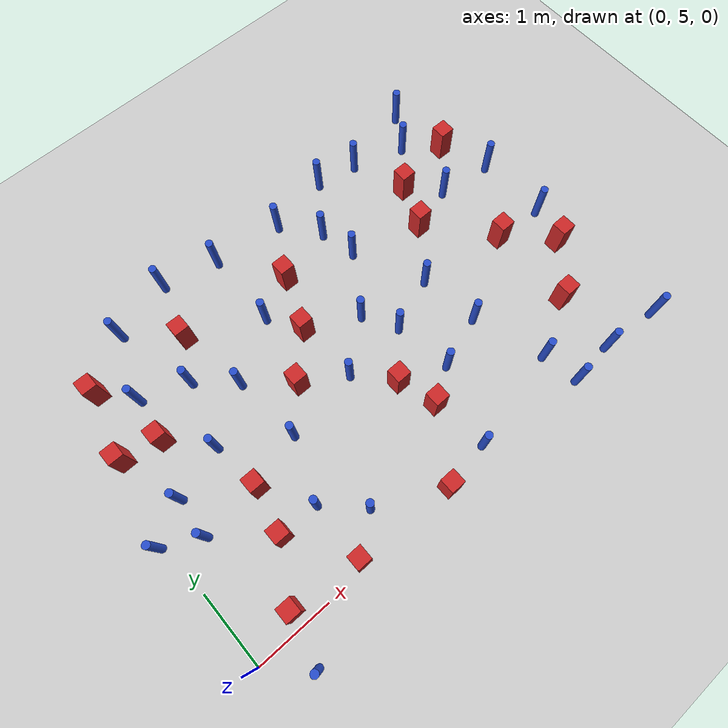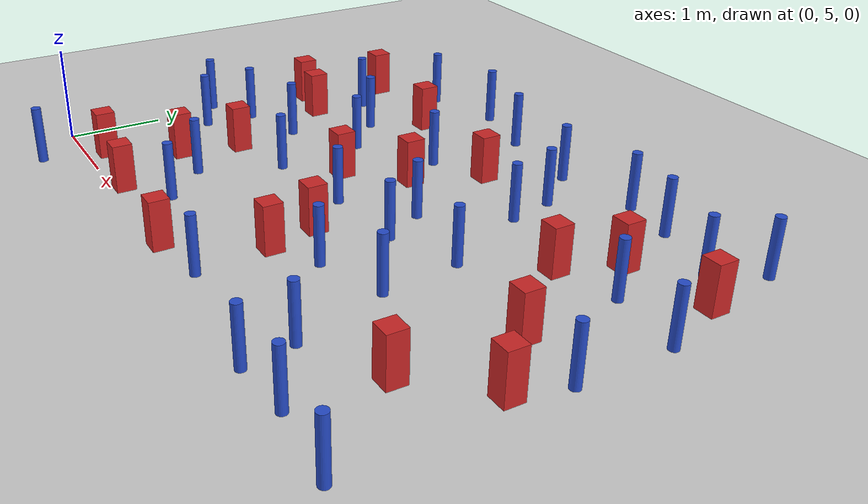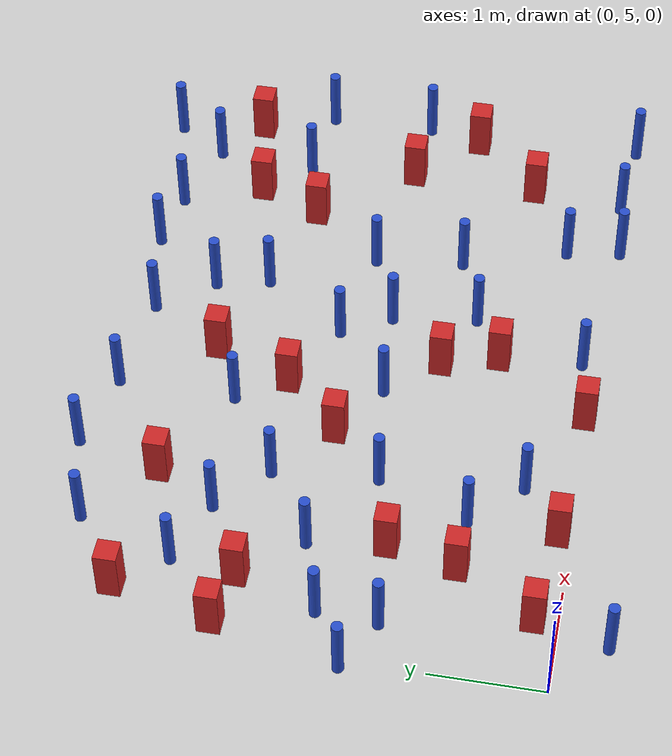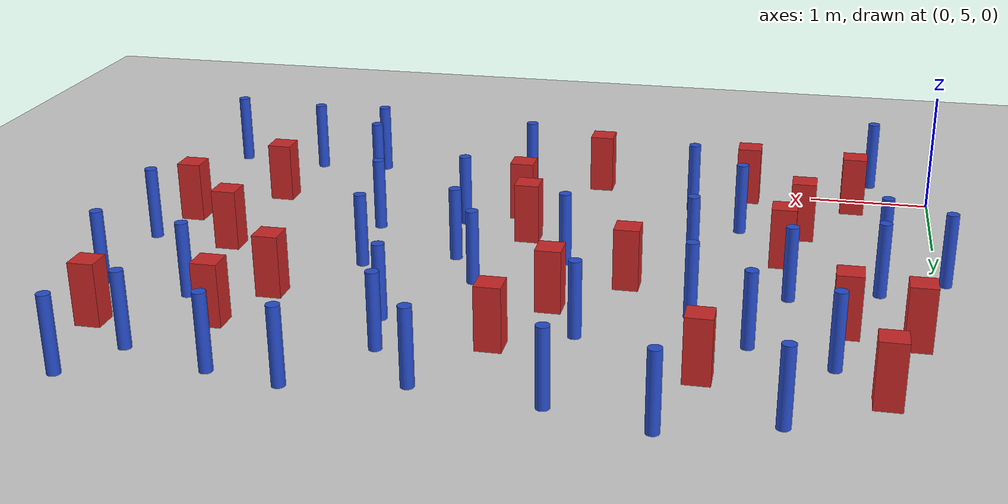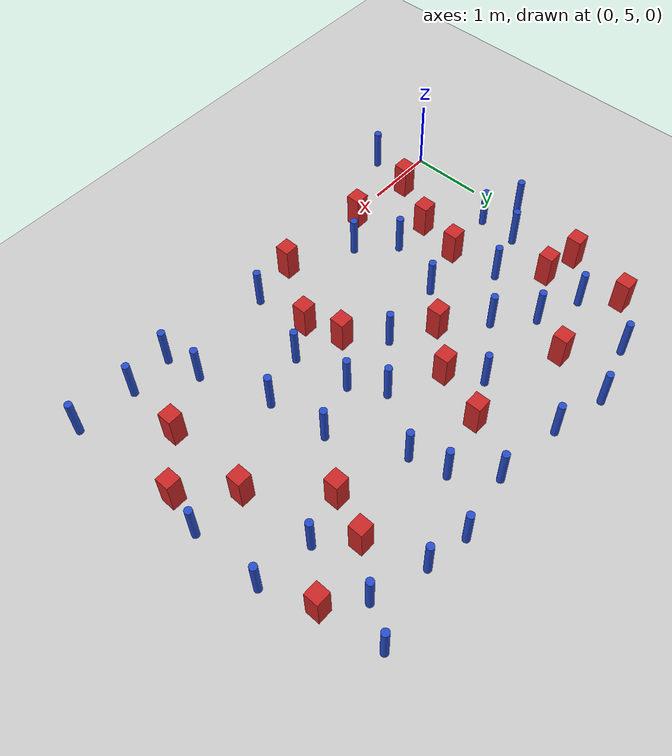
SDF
<sdf version="1.6">
 <world name="default">
  <model name="ground_plane">
   <static>1</static>
   <link name="link">
    <collision name="collision">
     <geometry><plane><normal>0 0 1</normal><size>100 100</size></plane></geometry>
     <surface><friction><ode><mu>100</mu><mu2>50</mu2></ode></friction></surface>
    </collision>
    <visual name="visual">
     <cast_shadows>0</cast_shadows>
     <geometry><plane><normal>0 0 1</normal><size>100 100</size></plane></geometry>
     <material>
      <ambient>1.0 1.0 1.0 1.0</ambient>
      <diffuse>0.8 0.8 0.8 1.0</diffuse>
      <specular>0.01 0.01 0.01 1.000000</specular>
     </material>
    </visual>
   </link>
  </model>
  <model name="square_post_obstacle6">
   <static>true</static>
   <pose>1.56429771834 5.11346397631 8.22691968438e-08 7.2212513382e-06 -7.54495500217e-07 2.29674213826e-05</pose>
   <link name="link">
    <pose>0 0 0.25 0 -0 0</pose>
    <inertial>
     <mass>100</mass>
     <inertia>
      <ixx>0.166667</ixx>
      <ixy>0</ixy>
      <ixz>0</ixz>
      <iyy>0.166667</iyy>
      <iyz>0</iyz>
      <izz>0.166667</izz>
     </inertia>
    </inertial>
    <collision name="collision"><geometry><box><size>.2 .2 .5</size></box></geometry></collision>
    <visual name="visual">
     <geometry><box><size>.2 .2 .5</size></box></geometry>
     <material>
      <script><name>Gazebo/Red</name><uri>file://media/materials/scripts/gazebo.material</uri></script>
     </material>
    </visual>
   </link>
  </model>
  <model name="square_post_obstacle11">
   <static>true</static>
   <pose>2.86878469184 7.71550263755 8.22691968438e-08 7.2212513382e-06 -7.54495500217e-07 2.29674213826e-05</pose>
   <link name="link">
    <pose>0 0 0.25 0 -0 0</pose>
    <inertial>
     <mass>100</mass>
     <inertia>
      <ixx>0.166667</ixx>
      <ixy>0</ixy>
      <ixz>0</ixz>
      <iyy>0.166667</iyy>
      <iyz>0</iyz>
      <izz>0.166667</izz>
     </inertia>
    </inertial>
    <collision name="collision"><geometry><box><size>.2 .2 .5</size></box></geometry></collision>
    <visual name="visual">
     <geometry><box><size>.2 .2 .5</size></box></geometry>
     <material>
      <script><name>Gazebo/Red</name><uri>file://media/materials/scripts/gazebo.material</uri></script>
     </material>
    </visual>
   </link>
  </model>
  <model name="pole_obstacle14">
   <static>true</static>
   <pose>1.8775066064 9.40847270662 2.88873142074e-08 -9.90536690474e-09 4.60219948974e-07 -1.2096599497e-07</pose>
   <link name="link">
    <pose>0 0 0.3 0 -0 0</pose>
    <inertial>
     <mass>1</mass>
     <inertia><ixx>0.145833</ixx><ixy>0</ixy><ixz>0</ixz><iyy>0.145833</iyy><iyz>0</iyz><izz>0.125</izz></inertia>
    </inertial>
    <collision name="collision">
     <geometry><cylinder><radius>0.05</radius><length>.6</length></cylinder></geometry>
    </collision>
    <visual name="visual">
     <geometry><cylinder><radius>0.05</radius><length>.6</length></cylinder></geometry>
     <material>
      <script><name>Gazebo/Blue</name><uri>file://media/materials/scripts/gazebo.material</uri></script>
     </material>
    </visual>
   </link>
  </model>
  <model name="pole_obstacle17">
   <static>true</static>
   <pose>-0.0674727620844 6.71778246287 2.88873142074e-08 -9.90536689653e-09 4.60219948994e-07 -1.20965994959e-07</pose>
   <link name="link">
    <pose>0 0 0.3 0 -0 0</pose>
    <inertial>
     <mass>1</mass>
     <inertia><ixx>0.145833</ixx><ixy>0</ixy><ixz>0</ixz><iyy>0.145833</iyy><iyz>0</iyz><izz>0.125</izz></inertia>
    </inertial>
    <collision name="collision">
     <geometry><cylinder><radius>0.05</radius><length>.6</length></cylinder></geometry>
    </collision>
    <visual name="visual">
     <geometry><cylinder><radius>0.05</radius><length>.6</length></cylinder></geometry>
     <material>
      <script><name>Gazebo/Blue</name><uri>file://media/materials/scripts/gazebo.material</uri></script>
     </material>
    </visual>
   </link>
  </model>
  <model name="square_post_obstacle14">
   <static>true</static>
   <pose>5.69747027684 7.0240183476 8.22691968438e-08 7.2212513382e-06 -7.54495500217e-07 2.29674213826e-05</pose>
   <link name="link">
    <pose>0 0 0.25 0 -0 0</pose>
    <inertial>
     <mass>100</mass>
     <inertia>
      <ixx>0.166667</ixx>
      <ixy>0</ixy>
      <ixz>0</ixz>
      <iyy>0.166667</iyy>
      <iyz>0</iyz>
      <izz>0.166667</izz>
     </inertia>
    </inertial>
    <collision name="collision"><geometry><box><size>.2 .2 .5</size></box></geometry></collision>
    <visual name="visual">
     <geometry><box><size>.2 .2 .5</size></box></geometry>
     <material>
      <script><name>Gazebo/Red</name><uri>file://media/materials/scripts/gazebo.material</uri></script>
     </material>
    </visual>
   </link>
  </model>
  <model name="pole_obstacle26">
   <static>true</static>
   <pose>3.94719929872 8.63067719352 2.88873142074e-08 -9.90536692318e-09 4.6021994893e-07 -1.20965994988e-07</pose>
   <link name="link">
    <pose>0 0 0.3 0 -0 0</pose>
    <inertial>
     <mass>1</mass>
     <inertia><ixx>0.145833</ixx><ixy>0</ixy><ixz>0</ixz><iyy>0.145833</iyy><iyz>0</iyz><izz>0.125</izz></inertia>
    </inertial>
    <collision name="collision">
     <geometry><cylinder><radius>0.05</radius><length>.6</length></cylinder></geometry>
    </collision>
    <visual name="visual">
     <geometry><cylinder><radius>0.05</radius><length>.6</length></cylinder></geometry>
     <material>
      <script><name>Gazebo/Blue</name><uri>file://media/materials/scripts/gazebo.material</uri></script>
     </material>
    </visual>
   </link>
  </model>
  <model name="pole_obstacle29">
   <static>true</static>
   <pose>2.91075863296 6.85931460848 2.88873142074e-08 -9.90536689859e-09 4.60219948989e-07 -1.20965994961e-07</pose>
   <link name="link">
    <pose>0 0 0.3 0 -0 0</pose>
    <inertial>
     <mass>1</mass>
     <inertia><ixx>0.145833</ixx><ixy>0</ixy><ixz>0</ixz><iyy>0.145833</iyy><iyz>0</iyz><izz>0.125</izz></inertia>
    </inertial>
    <collision name="collision">
     <geometry><cylinder><radius>0.05</radius><length>.6</length></cylinder></geometry>
    </collision>
    <visual name="visual">
     <geometry><cylinder><radius>0.05</radius><length>.6</length></cylinder></geometry>
     <material>
      <script><name>Gazebo/Blue</name><uri>file://media/materials/scripts/gazebo.material</uri></script>
     </material>
    </visual>
   </link>
  </model>
  <model name="square_post_obstacle30">
   <static>true</static>
   <pose>1.20121346486 6.53317252191 8.22691968438e-08 7.2212513382e-06 -7.54495500217e-07 2.29674213826e-05</pose>
   <link name="link">
    <pose>0 0 0.25 0 -0 0</pose>
    <inertial>
     <mass>100</mass>
     <inertia>
      <ixx>0.166667</ixx>
      <ixy>0</ixy>
      <ixz>0</ixz>
      <iyy>0.166667</iyy>
      <iyz>0</iyz>
      <izz>0.166667</izz>
     </inertia>
    </inertial>
    <collision name="collision"><geometry><box><size>.2 .2 .5</size></box></geometry></collision>
    <visual name="visual">
     <geometry><box><size>.2 .2 .5</size></box></geometry>
     <material>
      <script><name>Gazebo/Red</name><uri>file://media/materials/scripts/gazebo.material</uri></script>
     </material>
    </visual>
   </link>
  </model>
  <model name="pole_obstacle38">
   <static>true</static>
   <pose>6.3942815201 4.9247850995 2.88873142074e-08 -9.90536690842e-09 4.60219948965e-07 -1.20965994976e-07</pose>
   <link name="link">
    <pose>0 0 0.3 0 -0 0</pose>
    <inertial>
     <mass>1</mass>
     <inertia><ixx>0.145833</ixx><ixy>0</ixy><ixz>0</ixz><iyy>0.145833</iyy><iyz>0</iyz><izz>0.125</izz></inertia>
    </inertial>
    <collision name="collision">
     <geometry><cylinder><radius>0.05</radius><length>.6</length></cylinder></geometry>
    </collision>
    <visual name="visual">
     <geometry><cylinder><radius>0.05</radius><length>.6</length></cylinder></geometry>
     <material>
      <script><name>Gazebo/Blue</name><uri>file://media/materials/scripts/gazebo.material</uri></script>
     </material>
    </visual>
   </link>
  </model>
  <model name="pole_obstacle39">
   <static>true</static>
   <pose>4.9900810468 4.9414885344 2.88873142074e-08 -9.90536690842e-09 4.60219948965e-07 -1.20965994976e-07</pose>
   <link name="link">
    <pose>0 0 0.3 0 -0 0</pose>
    <inertial>
     <mass>1</mass>
     <inertia><ixx>0.145833</ixx><ixy>0</ixy><ixz>0</ixz><iyy>0.145833</iyy><iyz>0</iyz><izz>0.125</izz></inertia>
    </inertial>
    <collision name="collision">
     <geometry><cylinder><radius>0.05</radius><length>.6</length></cylinder></geometry>
    </collision>
    <visual name="visual">
     <geometry><cylinder><radius>0.05</radius><length>.6</length></cylinder></geometry>
     <material>
      <script><name>Gazebo/Blue</name><uri>file://media/materials/scripts/gazebo.material</uri></script>
     </material>
    </visual>
   </link>
  </model>
  <model name="pole_obstacle43">
   <static>true</static>
   <pose>1.06807192924 9.18380262641 2.88873142074e-08 -9.90536690474e-09 4.60219948974e-07 -1.2096599497e-07</pose>
   <link name="link">
    <pose>0 0 0.3 0 -0 0</pose>
    <inertial>
     <mass>1</mass>
     <inertia><ixx>0.145833</ixx><ixy>0</ixy><ixz>0</ixz><iyy>0.145833</iyy><iyz>0</iyz><izz>0.125</izz></inertia>
    </inertial>
    <collision name="collision">
     <geometry><cylinder><radius>0.05</radius><length>.6</length></cylinder></geometry>
    </collision>
    <visual name="visual">
     <geometry><cylinder><radius>0.05</radius><length>.6</length></cylinder></geometry>
     <material>
      <script><name>Gazebo/Blue</name><uri>file://media/materials/scripts/gazebo.material</uri></script>
     </material>
    </visual>
   </link>
  </model>
  <model name="pole_obstacle45">
   <static>true</static>
   <pose>1.11994307498 7.21799020981 2.88873142074e-08 -9.90536689852e-09 4.60219948989e-07 -1.2096599496e-07</pose>
   <link name="link">
    <pose>0 0 0.3 0 -0 0</pose>
    <inertial>
     <mass>1</mass>
     <inertia><ixx>0.145833</ixx><ixy>0</ixy><ixz>0</ixz><iyy>0.145833</iyy><iyz>0</iyz><izz>0.125</izz></inertia>
    </inertial>
    <collision name="collision">
     <geometry><cylinder><radius>0.05</radius><length>.6</length></cylinder></geometry>
    </collision>
    <visual name="visual">
     <geometry><cylinder><radius>0.05</radius><length>.6</length></cylinder></geometry>
     <material>
      <script><name>Gazebo/Blue</name><uri>file://media/materials/scripts/gazebo.material</uri></script>
     </material>
    </visual>
   </link>
  </model>
  <model name="pole_obstacle47">
   <static>true</static>
   <pose>5.59898643904 4.99775611051 2.88873142074e-08 -9.90536690842e-09 4.60219948965e-07 -1.20965994976e-07</pose>
   <link name="link">
    <pose>0 0 0.3 0 -0 0</pose>
    <inertial>
     <mass>1</mass>
     <inertia><ixx>0.145833</ixx><ixy>0</ixy><ixz>0</ixz><iyy>0.145833</iyy><iyz>0</iyz><izz>0.125</izz></inertia>
    </inertial>
    <collision name="collision">
     <geometry><cylinder><radius>0.05</radius><length>.6</length></cylinder></geometry>
    </collision>
    <visual name="visual">
     <geometry><cylinder><radius>0.05</radius><length>.6</length></cylinder></geometry>
     <material>
      <script><name>Gazebo/Blue</name><uri>file://media/materials/scripts/gazebo.material</uri></script>
     </material>
    </visual>
   </link>
  </model>
  <model name="square_post_obstacle38">
   <static>true</static>
   <pose>1.06477242733 5.91393585788 8.22691968438e-08 7.2212513382e-06 -7.54495500217e-07 2.29674213826e-05</pose>
   <link name="link">
    <pose>0 0 0.25 0 -0 0</pose>
    <inertial>
     <mass>100</mass>
     <inertia>
      <ixx>0.166667</ixx>
      <ixy>0</ixy>
      <ixz>0</ixz>
      <iyy>0.166667</iyy>
      <iyz>0</iyz>
      <izz>0.166667</izz>
     </inertia>
    </inertial>
    <collision name="collision"><geometry><box><size>.2 .2 .5</size></box></geometry></collision>
    <visual name="visual">
     <geometry><box><size>.2 .2 .5</size></box></geometry>
     <material>
      <script><name>Gazebo/Red</name><uri>file://media/materials/scripts/gazebo.material</uri></script>
     </material>
    </visual>
   </link>
  </model>
  <model name="pole_obstacle58">
   <static>true</static>
   <pose>4.50088119492 7.20113842642 2.88873142074e-08 -9.90536690842e-09 4.60219948965e-07 -1.20965994976e-07</pose>
   <link name="link">
    <pose>0 0 0.3 0 -0 0</pose>
    <inertial>
     <mass>1</mass>
     <inertia><ixx>0.145833</ixx><ixy>0</ixy><ixz>0</ixz><iyy>0.145833</iyy><iyz>0</iyz><izz>0.125</izz></inertia>
    </inertial>
    <collision name="collision">
     <geometry><cylinder><radius>0.05</radius><length>.6</length></cylinder></geometry>
    </collision>
    <visual name="visual">
     <geometry><cylinder><radius>0.05</radius><length>.6</length></cylinder></geometry>
     <material>
      <script><name>Gazebo/Blue</name><uri>file://media/materials/scripts/gazebo.material</uri></script>
     </material>
    </visual>
   </link>
  </model>
  <model name="square_post_obstacle45">
   <static>true</static>
   <pose>3.30623516975 6.39643522415 8.22691968438e-08 7.2212513382e-06 -7.54495500217e-07 2.29674213826e-05</pose>
   <link name="link">
    <pose>0 0 0.25 0 -0 0</pose>
    <inertial>
     <mass>100</mass>
     <inertia>
      <ixx>0.166667</ixx>
      <ixy>0</ixy>
      <ixz>0</ixz>
      <iyy>0.166667</iyy>
      <iyz>0</iyz>
      <izz>0.166667</izz>
     </inertia>
    </inertial>
    <collision name="collision"><geometry><box><size>.2 .2 .5</size></box></geometry></collision>
    <visual name="visual">
     <geometry><box><size>.2 .2 .5</size></box></geometry>
     <material>
      <script><name>Gazebo/Red</name><uri>file://media/materials/scripts/gazebo.material</uri></script>
     </material>
    </visual>
   </link>
  </model>
  <model name="pole_obstacle66">
   <static>true</static>
   <pose>4.59922528708 6.38963004076 2.88873142074e-08 -9.90536690842e-09 4.60219948965e-07 -1.20965994976e-07</pose>
   <link name="link">
    <pose>0 0 0.3 0 -0 0</pose>
    <inertial>
     <mass>1</mass>
     <inertia><ixx>0.145833</ixx><ixy>0</ixy><ixz>0</ixz><iyy>0.145833</iyy><iyz>0</iyz><izz>0.125</izz></inertia>
    </inertial>
    <collision name="collision">
     <geometry><cylinder><radius>0.05</radius><length>.6</length></cylinder></geometry>
    </collision>
    <visual name="visual">
     <geometry><cylinder><radius>0.05</radius><length>.6</length></cylinder></geometry>
     <material>
      <script><name>Gazebo/Blue</name><uri>file://media/materials/scripts/gazebo.material</uri></script>
     </material>
    </visual>
   </link>
  </model>
  <model name="pole_obstacle68">
   <static>true</static>
   <pose>4.42109881048 9.28164030978 2.88873142074e-08 -9.9053668967e-09 4.60219948993e-07 -1.20965994957e-07</pose>
   <link name="link">
    <pose>0 0 0.3 0 -0 0</pose>
    <inertial>
     <mass>1</mass>
     <inertia><ixx>0.145833</ixx><ixy>0</ixy><ixz>0</ixz><iyy>0.145833</iyy><iyz>0</iyz><izz>0.125</izz></inertia>
    </inertial>
    <collision name="collision">
     <geometry><cylinder><radius>0.05</radius><length>.6</length></cylinder></geometry>
    </collision>
    <visual name="visual">
     <geometry><cylinder><radius>0.05</radius><length>.6</length></cylinder></geometry>
     <material>
      <script><name>Gazebo/Blue</name><uri>file://media/materials/scripts/gazebo.material</uri></script>
     </material>
    </visual>
   </link>
  </model>
  <model name="pole_obstacle73">
   <static>true</static>
   <pose>4.90840832587 5.43844109958 2.88873142074e-08 -9.90536690842e-09 4.60219948965e-07 -1.20965994976e-07</pose>
   <link name="link">
    <pose>0 0 0.3 0 -0 0</pose>
    <inertial>
     <mass>1</mass>
     <inertia><ixx>0.145833</ixx><ixy>0</ixy><ixz>0</ixz><iyy>0.145833</iyy><iyz>0</iyz><izz>0.125</izz></inertia>
    </inertial>
    <collision name="collision">
     <geometry><cylinder><radius>0.05</radius><length>.6</length></cylinder></geometry>
    </collision>
    <visual name="visual">
     <geometry><cylinder><radius>0.05</radius><length>.6</length></cylinder></geometry>
     <material>
      <script><name>Gazebo/Blue</name><uri>file://media/materials/scripts/gazebo.material</uri></script>
     </material>
    </visual>
   </link>
  </model>
  <model name="square_post_obstacle64">
   <static>true</static>
   <pose>5.66628032892 5.84183876902 8.22691968438e-08 7.2212513382e-06 -7.54495500217e-07 2.29674213826e-05</pose>
   <link name="link">
    <pose>0 0 0.25 0 -0 0</pose>
    <inertial>
     <mass>100</mass>
     <inertia>
      <ixx>0.166667</ixx>
      <ixy>0</ixy>
      <ixz>0</ixz>
      <iyy>0.166667</iyy>
      <iyz>0</iyz>
      <izz>0.166667</izz>
     </inertia>
    </inertial>
    <collision name="collision"><geometry><box><size>.2 .2 .5</size></box></geometry></collision>
    <visual name="visual">
     <geometry><box><size>.2 .2 .5</size></box></geometry>
     <material>
      <script><name>Gazebo/Red</name><uri>file://media/materials/scripts/gazebo.material</uri></script>
     </material>
    </visual>
   </link>
  </model>
  <model name="square_post_obstacle68">
   <static>true</static>
   <pose>3.45474027445 5.88435022326 8.22691968438e-08 7.2212513382e-06 -7.54495500217e-07 2.29674213826e-05</pose>
   <link name="link">
    <pose>0 0 0.25 0 -0 0</pose>
    <inertial>
     <mass>100</mass>
     <inertia>
      <ixx>0.166667</ixx>
      <ixy>0</ixy>
      <ixz>0</ixz>
      <iyy>0.166667</iyy>
      <iyz>0</iyz>
      <izz>0.166667</izz>
     </inertia>
    </inertial>
    <collision name="collision"><geometry><box><size>.2 .2 .5</size></box></geometry></collision>
    <visual name="visual">
     <geometry><box><size>.2 .2 .5</size></box></geometry>
     <material>
      <script><name>Gazebo/Red</name><uri>file://media/materials/scripts/gazebo.material</uri></script>
     </material>
    </visual>
   </link>
  </model>
  <model name="pole_obstacle80">
   <static>true</static>
   <pose>6.37080404531 7.94954933328 2.88873142074e-08 -9.90536690842e-09 4.60219948965e-07 -1.20965994976e-07</pose>
   <link name="link">
    <pose>0 0 0.3 0 -0 0</pose>
    <inertial>
     <mass>1</mass>
     <inertia><ixx>0.145833</ixx><ixy>0</ixy><ixz>0</ixz><iyy>0.145833</iyy><iyz>0</iyz><izz>0.125</izz></inertia>
    </inertial>
    <collision name="collision">
     <geometry><cylinder><radius>0.05</radius><length>.6</length></cylinder></geometry>
    </collision>
    <visual name="visual">
     <geometry><cylinder><radius>0.05</radius><length>.6</length></cylinder></geometry>
     <material>
      <script><name>Gazebo/Blue</name><uri>file://media/materials/scripts/gazebo.material</uri></script>
     </material>
    </visual>
   </link>
  </model>
  <model name="pole_obstacle86">
   <static>true</static>
   <pose>2.6199380122 9.23188498334 2.88873142074e-08 -9.90536692318e-09 4.6021994893e-07 -1.20965994988e-07</pose>
   <link name="link">
    <pose>0 0 0.3 0 -0 0</pose>
    <inertial>
     <mass>1</mass>
     <inertia><ixx>0.145833</ixx><ixy>0</ixy><ixz>0</ixz><iyy>0.145833</iyy><iyz>0</iyz><izz>0.125</izz></inertia>
    </inertial>
    <collision name="collision">
     <geometry><cylinder><radius>0.05</radius><length>.6</length></cylinder></geometry>
    </collision>
    <visual name="visual">
     <geometry><cylinder><radius>0.05</radius><length>.6</length></cylinder></geometry>
     <material>
      <script><name>Gazebo/Blue</name><uri>file://media/materials/scripts/gazebo.material</uri></script>
     </material>
    </visual>
   </link>
  </model>
  <model name="square_post_obstacle78">
   <static>true</static>
   <pose>0.687965764731 7.73392586515 8.22691968438e-08 7.2212513382e-06 -7.54495500217e-07 2.29674213826e-05</pose>
   <link name="link">
    <pose>0 0 0.25 0 -0 0</pose>
    <inertial>
     <mass>100</mass>
     <inertia>
      <ixx>0.166667</ixx>
      <ixy>0</ixy>
      <ixz>0</ixz>
      <iyy>0.166667</iyy>
      <iyz>0</iyz>
      <izz>0.166667</izz>
     </inertia>
    </inertial>
    <collision name="collision"><geometry><box><size>.2 .2 .5</size></box></geometry></collision>
    <visual name="visual">
     <geometry><box><size>.2 .2 .5</size></box></geometry>
     <material>
      <script><name>Gazebo/Red</name><uri>file://media/materials/scripts/gazebo.material</uri></script>
     </material>
    </visual>
   </link>
  </model>
  <model name="square_post_obstacle83">
   <static>true</static>
   <pose>2.89194912775 5.0374316459 8.22691968438e-08 7.2212513382e-06 -7.54495500217e-07 2.29674213826e-05</pose>
   <link name="link">
    <pose>0 0 0.25 0 -0 0</pose>
    <inertial>
     <mass>100</mass>
     <inertia>
      <ixx>0.166667</ixx>
      <ixy>0</ixy>
      <ixz>0</ixz>
      <iyy>0.166667</iyy>
      <iyz>0</iyz>
      <izz>0.166667</izz>
     </inertia>
    </inertial>
    <collision name="collision"><geometry><box><size>.2 .2 .5</size></box></geometry></collision>
    <visual name="visual">
     <geometry><box><size>.2 .2 .5</size></box></geometry>
     <material>
      <script><name>Gazebo/Red</name><uri>file://media/materials/scripts/gazebo.material</uri></script>
     </material>
    </visual>
   </link>
  </model>
  <model name="pole_obstacle91">
   <static>true</static>
   <pose>0.436673477002 7.00732855061 2.88873142074e-08 -9.90536689683e-09 4.60219948993e-07 -1.20965994957e-07</pose>
   <link name="link">
    <pose>0 0 0.3 0 -0 0</pose>
    <inertial>
     <mass>1</mass>
     <inertia><ixx>0.145833</ixx><ixy>0</ixy><ixz>0</ixz><iyy>0.145833</iyy><iyz>0</iyz><izz>0.125</izz></inertia>
    </inertial>
    <collision name="collision">
     <geometry><cylinder><radius>0.05</radius><length>.6</length></cylinder></geometry>
    </collision>
    <visual name="visual">
     <geometry><cylinder><radius>0.05</radius><length>.6</length></cylinder></geometry>
     <material>
      <script><name>Gazebo/Blue</name><uri>file://media/materials/scripts/gazebo.material</uri></script>
     </material>
    </visual>
   </link>
  </model>
  <model name="pole_obstacle98">
   <static>true</static>
   <pose>0.757045810856 8.32013955294 2.88873142074e-08 -9.90536690779e-09 4.60219948967e-07 -1.20965994975e-07</pose>
   <link name="link">
    <pose>0 0 0.3 0 -0 0</pose>
    <inertial>
     <mass>1</mass>
     <inertia><ixx>0.145833</ixx><ixy>0</ixy><ixz>0</ixz><iyy>0.145833</iyy><iyz>0</iyz><izz>0.125</izz></inertia>
    </inertial>
    <collision name="collision">
     <geometry><cylinder><radius>0.05</radius><length>.6</length></cylinder></geometry>
    </collision>
    <visual name="visual">
     <geometry><cylinder><radius>0.05</radius><length>.6</length></cylinder></geometry>
     <material>
      <script><name>Gazebo/Blue</name><uri>file://media/materials/scripts/gazebo.material</uri></script>
     </material>
    </visual>
   </link>
  </model>
  <model name="pole_obstacle99">
   <static>true</static>
   <pose>4.05871801114 8.14164189192 2.88873142074e-08 -9.9053668967e-09 4.60219948993e-07 -1.20965994957e-07</pose>
   <link name="link">
    <pose>0 0 0.3 0 -0 0</pose>
    <inertial>
     <mass>1</mass>
     <inertia><ixx>0.145833</ixx><ixy>0</ixy><ixz>0</ixz><iyy>0.145833</iyy><iyz>0</iyz><izz>0.125</izz></inertia>
    </inertial>
    <collision name="collision">
     <geometry><cylinder><radius>0.05</radius><length>.6</length></cylinder></geometry>
    </collision>
    <visual name="visual">
     <geometry><cylinder><radius>0.05</radius><length>.6</length></cylinder></geometry>
     <material>
      <script><name>Gazebo/Blue</name><uri>file://media/materials/scripts/gazebo.material</uri></script>
     </material>
    </visual>
   </link>
  </model>
  <model name="square_post_obstacle91">
   <static>true</static>
   <pose>6.24714109516 6.46433676323 8.22691968438e-08 7.2212513382e-06 -7.54495500217e-07 2.29674213826e-05</pose>
   <link name="link">
    <pose>0 0 0.25 0 -0 0</pose>
    <inertial>
     <mass>100</mass>
     <inertia>
      <ixx>0.166667</ixx>
      <ixy>0</ixy>
      <ixz>0</ixz>
      <iyy>0.166667</iyy>
      <iyz>0</iyz>
      <izz>0.166667</izz>
     </inertia>
    </inertial>
    <collision name="collision"><geometry><box><size>.2 .2 .5</size></box></geometry></collision>
    <visual name="visual">
     <geometry><box><size>.2 .2 .5</size></box></geometry>
     <material>
      <script><name>Gazebo/Red</name><uri>file://media/materials/scripts/gazebo.material</uri></script>
     </material>
    </visual>
   </link>
  </model>
  <model name="square_post_obstacle108">
   <static>true</static>
   <pose>1.669819223 8.63297770988 8.22691968438e-08 7.22125133819e-06 -7.54495500217e-07 2.29674213826e-05</pose>
   <link name="link">
    <pose>0 0 0.25 0 -0 0</pose>
    <inertial>
     <mass>100</mass>
     <inertia>
      <ixx>0.166667</ixx>
      <ixy>0</ixy>
      <ixz>0</ixz>
      <iyy>0.166667</iyy>
      <iyz>0</iyz>
      <izz>0.166667</izz>
     </inertia>
    </inertial>
    <collision name="collision"><geometry><box><size>.2 .2 .5</size></box></geometry></collision>
    <visual name="visual">
     <geometry><box><size>.2 .2 .5</size></box></geometry>
     <material>
      <script><name>Gazebo/Red</name><uri>file://media/materials/scripts/gazebo.material</uri></script>
     </material>
    </visual>
   </link>
  </model>
  <model name="square_post_obstacle112">
   <static>true</static>
   <pose>0.18594477387 7.83941683571 8.22691968438e-08 7.2212513382e-06 -7.54495500217e-07 2.29674213826e-05</pose>
   <link name="link">
    <pose>0 0 0.25 0 -0 0</pose>
    <inertial>
     <mass>100</mass>
     <inertia>
      <ixx>0.166667</ixx>
      <ixy>0</ixy>
      <ixz>0</ixz>
      <iyy>0.166667</iyy>
      <iyz>0</iyz>
      <izz>0.166667</izz>
     </inertia>
    </inertial>
    <collision name="collision"><geometry><box><size>.2 .2 .5</size></box></geometry></collision>
    <visual name="visual">
     <geometry><box><size>.2 .2 .5</size></box></geometry>
     <material>
      <script><name>Gazebo/Red</name><uri>file://media/materials/scripts/gazebo.material</uri></script>
     </material>
    </visual>
   </link>
  </model>
  <model name="pole_obstacle116">
   <static>true</static>
   <pose>1.58180308606 5.90192346106 2.88873142074e-08 -9.90536689852e-09 4.60219948989e-07 -1.2096599496e-07</pose>
   <link name="link">
    <pose>0 0 0.3 0 -0 0</pose>
    <inertial>
     <mass>1</mass>
     <inertia><ixx>0.145833</ixx><ixy>0</ixy><ixz>0</ixz><iyy>0.145833</iyy><iyz>0</iyz><izz>0.125</izz></inertia>
    </inertial>
    <collision name="collision">
     <geometry><cylinder><radius>0.05</radius><length>.6</length></cylinder></geometry>
    </collision>
    <visual name="visual">
     <geometry><cylinder><radius>0.05</radius><length>.6</length></cylinder></geometry>
     <material>
      <script><name>Gazebo/Blue</name><uri>file://media/materials/scripts/gazebo.material</uri></script>
     </material>
    </visual>
   </link>
  </model>
  <model name="pole_obstacle117">
   <static>true</static>
   <pose>2.02411480615 5.46012467668 2.88873142074e-08 -9.90536689932e-09 4.60219948987e-07 -1.20965994962e-07</pose>
   <link name="link">
    <pose>0 0 0.3 0 -0 0</pose>
    <inertial>
     <mass>1</mass>
     <inertia><ixx>0.145833</ixx><ixy>0</ixy><ixz>0</ixz><iyy>0.145833</iyy><iyz>0</iyz><izz>0.125</izz></inertia>
    </inertial>
    <collision name="collision">
     <geometry><cylinder><radius>0.05</radius><length>.6</length></cylinder></geometry>
    </collision>
    <visual name="visual">
     <geometry><cylinder><radius>0.05</radius><length>.6</length></cylinder></geometry>
     <material>
      <script><name>Gazebo/Blue</name><uri>file://media/materials/scripts/gazebo.material</uri></script>
     </material>
    </visual>
   </link>
  </model>
  <model name="square_post_obstacle118">
   <static>true</static>
   <pose>2.35984763226 7.19772505206 8.22691968438e-08 7.2212513382e-06 -7.54495500217e-07 2.29674213826e-05</pose>
   <link name="link">
    <pose>0 0 0.25 0 -0 0</pose>
    <inertial>
     <mass>100</mass>
     <inertia>
      <ixx>0.166667</ixx>
      <ixy>0</ixy>
      <ixz>0</ixz>
      <iyy>0.166667</iyy>
      <iyz>0</iyz>
      <izz>0.166667</izz>
     </inertia>
    </inertial>
    <collision name="collision"><geometry><box><size>.2 .2 .5</size></box></geometry></collision>
    <visual name="visual">
     <geometry><box><size>.2 .2 .5</size></box></geometry>
     <material>
      <script><name>Gazebo/Red</name><uri>file://media/materials/scripts/gazebo.material</uri></script>
     </material>
    </visual>
   </link>
  </model>
  <model name="square_post_obstacle124">
   <static>true</static>
   <pose>5.01026711393 7.86476266313 8.22691968438e-08 7.2212513382e-06 -7.54495500217e-07 2.29674213826e-05</pose>
   <link name="link">
    <pose>0 0 0.25 0 -0 0</pose>
    <inertial>
     <mass>100</mass>
     <inertia>
      <ixx>0.166667</ixx>
      <ixy>0</ixy>
      <ixz>0</ixz>
      <iyy>0.166667</iyy>
      <iyz>0</iyz>
      <izz>0.166667</izz>
     </inertia>
    </inertial>
    <collision name="collision"><geometry><box><size>.2 .2 .5</size></box></geometry></collision>
    <visual name="visual">
     <geometry><box><size>.2 .2 .5</size></box></geometry>
     <material>
      <script><name>Gazebo/Red</name><uri>file://media/materials/scripts/gazebo.material</uri></script>
     </material>
    </visual>
   </link>
  </model>
  <model name="square_post_obstacle129">
   <static>true</static>
   <pose>3.15726345583 8.42988825235 8.22691968438e-08 7.22125133819e-06 -7.54495500217e-07 2.29674213826e-05</pose>
   <link name="link">
    <pose>0 0 0.25 0 -0 0</pose>
    <inertial>
     <mass>100</mass>
     <inertia>
      <ixx>0.166667</ixx>
      <ixy>0</ixy>
      <ixz>0</ixz>
      <iyy>0.166667</iyy>
      <iyz>0</iyz>
      <izz>0.166667</izz>
     </inertia>
    </inertial>
    <collision name="collision"><geometry><box><size>.2 .2 .5</size></box></geometry></collision>
    <visual name="visual">
     <geometry><box><size>.2 .2 .5</size></box></geometry>
     <material>
      <script><name>Gazebo/Red</name><uri>file://media/materials/scripts/gazebo.material</uri></script>
     </material>
    </visual>
   </link>
  </model>
  <model name="pole_obstacle134">
   <static>true</static>
   <pose>0.408015388144 6.46771503326 2.88873142074e-08 -9.90536689683e-09 4.60219948993e-07 -1.20965994957e-07</pose>
   <link name="link">
    <pose>0 0 0.3 0 -0 0</pose>
    <inertial>
     <mass>1</mass>
     <inertia><ixx>0.145833</ixx><ixy>0</ixy><ixz>0</ixz><iyy>0.145833</iyy><iyz>0</iyz><izz>0.125</izz></inertia>
    </inertial>
    <collision name="collision">
     <geometry><cylinder><radius>0.05</radius><length>.6</length></cylinder></geometry>
    </collision>
    <visual name="visual">
     <geometry><cylinder><radius>0.05</radius><length>.6</length></cylinder></geometry>
     <material>
      <script><name>Gazebo/Blue</name><uri>file://media/materials/scripts/gazebo.material</uri></script>
     </material>
    </visual>
   </link>
  </model>
  <model name="square_post_obstacle138">
   <static>true</static>
   <pose>6.11704957482 8.61061388303 8.22691968438e-08 7.22125133819e-06 -7.54495500217e-07 2.29674213826e-05</pose>
   <link name="link">
    <pose>0 0 0.25 0 -0 0</pose>
    <inertial>
     <mass>100</mass>
     <inertia>
      <ixx>0.166667</ixx>
      <ixy>0</ixy>
      <ixz>0</ixz>
      <iyy>0.166667</iyy>
      <iyz>0</iyz>
      <izz>0.166667</izz>
     </inertia>
    </inertial>
    <collision name="collision"><geometry><box><size>.2 .2 .5</size></box></geometry></collision>
    <visual name="visual">
     <geometry><box><size>.2 .2 .5</size></box></geometry>
     <material>
      <script><name>Gazebo/Red</name><uri>file://media/materials/scripts/gazebo.material</uri></script>
     </material>
    </visual>
   </link>
  </model>
  <model name="pole_obstacle152">
   <static>true</static>
   <pose>5.62878922297 8.0435345203 2.88873142074e-08 -9.90536690354e-09 4.60219948977e-07 -1.20965994967e-07</pose>
   <link name="link">
    <pose>0 0 0.3 0 -0 0</pose>
    <inertial>
     <mass>1</mass>
     <inertia><ixx>0.145833</ixx><ixy>0</ixy><ixz>0</ixz><iyy>0.145833</iyy><iyz>0</iyz><izz>0.125</izz></inertia>
    </inertial>
    <collision name="collision">
     <geometry><cylinder><radius>0.05</radius><length>.6</length></cylinder></geometry>
    </collision>
    <visual name="visual">
     <geometry><cylinder><radius>0.05</radius><length>.6</length></cylinder></geometry>
     <material>
      <script><name>Gazebo/Blue</name><uri>file://media/materials/scripts/gazebo.material</uri></script>
     </material>
    </visual>
   </link>
  </model>
  <model name="pole_obstacle154">
   <static>true</static>
   <pose>1.36913498085 8.08901804398 2.88873142074e-08 -9.90536690474e-09 4.60219948974e-07 -1.2096599497e-07</pose>
   <link name="link">
    <pose>0 0 0.3 0 -0 0</pose>
    <inertial>
     <mass>1</mass>
     <inertia><ixx>0.145833</ixx><ixy>0</ixy><ixz>0</ixz><iyy>0.145833</iyy><iyz>0</iyz><izz>0.125</izz></inertia>
    </inertial>
    <collision name="collision">
     <geometry><cylinder><radius>0.05</radius><length>.6</length></cylinder></geometry>
    </collision>
    <visual name="visual">
     <geometry><cylinder><radius>0.05</radius><length>.6</length></cylinder></geometry>
     <material>
      <script><name>Gazebo/Blue</name><uri>file://media/materials/scripts/gazebo.material</uri></script>
     </material>
    </visual>
   </link>
  </model>
  <model name="square_post_obstacle172">
   <static>true</static>
   <pose>0.412750778471 8.74241810051 8.22691968438e-08 7.22125133819e-06 -7.54495500217e-07 2.29674213826e-05</pose>
   <link name="link">
    <pose>0 0 0.25 0 -0 0</pose>
    <inertial>
     <mass>100</mass>
     <inertia>
      <ixx>0.166667</ixx>
      <ixy>0</ixy>
      <ixz>0</ixz>
      <iyy>0.166667</iyy>
      <iyz>0</iyz>
      <izz>0.166667</izz>
     </inertia>
    </inertial>
    <collision name="collision"><geometry><box><size>.2 .2 .5</size></box></geometry></collision>
    <visual name="visual">
     <geometry><box><size>.2 .2 .5</size></box></geometry>
     <material>
      <script><name>Gazebo/Red</name><uri>file://media/materials/scripts/gazebo.material</uri></script>
     </material>
    </visual>
   </link>
  </model>
  <model name="pole_obstacle179">
   <static>true</static>
   <pose>5.98864462721 9.42508668921 2.88873142074e-08 -9.9053668967e-09 4.60219948993e-07 -1.20965994957e-07</pose>
   <link name="link">
    <pose>0 0 0.3 0 -0 0</pose>
    <inertial>
     <mass>1</mass>
     <inertia><ixx>0.145833</ixx><ixy>0</ixy><ixz>0</ixz><iyy>0.145833</iyy><iyz>0</iyz><izz>0.125</izz></inertia>
    </inertial>
    <collision name="collision">
     <geometry><cylinder><radius>0.05</radius><length>.6</length></cylinder></geometry>
    </collision>
    <visual name="visual">
     <geometry><cylinder><radius>0.05</radius><length>.6</length></cylinder></geometry>
     <material>
      <script><name>Gazebo/Blue</name><uri>file://media/materials/scripts/gazebo.material</uri></script>
     </material>
    </visual>
   </link>
  </model>
  <model name="pole_obstacle182">
   <static>true</static>
   <pose>6.38454868244 6.97288591861 2.88873142074e-08 -9.90536690842e-09 4.60219948965e-07 -1.20965994976e-07</pose>
   <link name="link">
    <pose>0 0 0.3 0 -0 0</pose>
    <inertial>
     <mass>1</mass>
     <inertia><ixx>0.145833</ixx><ixy>0</ixy><ixz>0</ixz><iyy>0.145833</iyy><iyz>0</iyz><izz>0.125</izz></inertia>
    </inertial>
    <collision name="collision">
     <geometry><cylinder><radius>0.05</radius><length>.6</length></cylinder></geometry>
    </collision>
    <visual name="visual">
     <geometry><cylinder><radius>0.05</radius><length>.6</length></cylinder></geometry>
     <material>
      <script><name>Gazebo/Blue</name><uri>file://media/materials/scripts/gazebo.material</uri></script>
     </material>
    </visual>
   </link>
  </model>
  <model name="pole_obstacle186">
   <static>true</static>
   <pose>3.79620321479 6.92688698965 2.88873142074e-08 -9.90536689859e-09 4.60219948989e-07 -1.20965994961e-07</pose>
   <link name="link">
    <pose>0 0 0.3 0 -0 0</pose>
    <inertial>
     <mass>1</mass>
     <inertia><ixx>0.145833</ixx><ixy>0</ixy><ixz>0</ixz><iyy>0.145833</iyy><iyz>0</iyz><izz>0.125</izz></inertia>
    </inertial>
    <collision name="collision">
     <geometry><cylinder><radius>0.05</radius><length>.6</length></cylinder></geometry>
    </collision>
    <visual name="visual">
     <geometry><cylinder><radius>0.05</radius><length>.6</length></cylinder></geometry>
     <material>
      <script><name>Gazebo/Blue</name><uri>file://media/materials/scripts/gazebo.material</uri></script>
     </material>
    </visual>
   </link>
  </model>
  <model name="square_post_obstacle191">
   <static>true</static>
   <pose>5.24923533009 8.44331044842 8.22691968438e-08 7.22125133819e-06 -7.54495500217e-07 2.29674213826e-05</pose>
   <link name="link">
    <pose>0 0 0.25 0 -0 0</pose>
    <inertial>
     <mass>100</mass>
     <inertia>
      <ixx>0.166667</ixx>
      <ixy>0</ixy>
      <ixz>0</ixz>
      <iyy>0.166667</iyy>
      <iyz>0</iyz>
      <izz>0.166667</izz>
     </inertia>
    </inertial>
    <collision name="collision"><geometry><box><size>.2 .2 .5</size></box></geometry></collision>
    <visual name="visual">
     <geometry><box><size>.2 .2 .5</size></box></geometry>
     <material>
      <script><name>Gazebo/Red</name><uri>file://media/materials/scripts/gazebo.material</uri></script>
     </material>
    </visual>
   </link>
  </model>
  <model name="pole_obstacle188">
   <static>true</static>
   <pose>3.56711019701 9.12474006614 2.88873142074e-08 -9.90536692318e-09 4.6021994893e-07 -1.20965994988e-07</pose>
   <link name="link">
    <pose>0 0 0.3 0 -0 0</pose>
    <inertial>
     <mass>1</mass>
     <inertia><ixx>0.145833</ixx><ixy>0</ixy><ixz>0</ixz><iyy>0.145833</iyy><iyz>0</iyz><izz>0.125</izz></inertia>
    </inertial>
    <collision name="collision">
     <geometry><cylinder><radius>0.05</radius><length>.6</length></cylinder></geometry>
    </collision>
    <visual name="visual">
     <geometry><cylinder><radius>0.05</radius><length>.6</length></cylinder></geometry>
     <material>
      <script><name>Gazebo/Blue</name><uri>file://media/materials/scripts/gazebo.material</uri></script>
     </material>
    </visual>
   </link>
  </model>
  <model name="square_post_obstacle198">
   <static>true</static>
   <pose>0.654163526869 5.20980760358 8.22691968438e-08 7.2212513382e-06 -7.54495500217e-07 2.29674213826e-05</pose>
   <link name="link">
    <pose>0 0 0.25 0 -0 0</pose>
    <inertial>
     <mass>100</mass>
     <inertia>
      <ixx>0.166667</ixx>
      <ixy>0</ixy>
      <ixz>0</ixz>
      <iyy>0.166667</iyy>
      <iyz>0</iyz>
      <izz>0.166667</izz>
     </inertia>
    </inertial>
    <collision name="collision"><geometry><box><size>.2 .2 .5</size></box></geometry></collision>
    <visual name="visual">
     <geometry><box><size>.2 .2 .5</size></box></geometry>
     <material>
      <script><name>Gazebo/Red</name><uri>file://media/materials/scripts/gazebo.material</uri></script>
     </material>
    </visual>
   </link>
  </model>
  <model name="pole_obstacle193">
   <static>true</static>
   <pose>4.98320867293 9.18399944256 2.88873142074e-08 -9.9053668967e-09 4.60219948993e-07 -1.20965994957e-07</pose>
   <link name="link">
    <pose>0 0 0.3 0 -0 0</pose>
    <inertial>
     <mass>1</mass>
     <inertia><ixx>0.145833</ixx><ixy>0</ixy><ixz>0</ixz><iyy>0.145833</iyy><iyz>0</iyz><izz>0.125</izz></inertia>
    </inertial>
    <collision name="collision">
     <geometry><cylinder><radius>0.05</radius><length>.6</length></cylinder></geometry>
    </collision>
    <visual name="visual">
     <geometry><cylinder><radius>0.05</radius><length>.6</length></cylinder></geometry>
     <material>
      <script><name>Gazebo/Blue</name><uri>file://media/materials/scripts/gazebo.material</uri></script>
     </material>
    </visual>
   </link>
  </model>
  <model name="pole_obstacle194">
   <static>true</static>
   <pose>1.90513002025 6.72371977611 2.88873142074e-08 -9.90536689852e-09 4.60219948989e-07 -1.2096599496e-07</pose>
   <link name="link">
    <pose>0 0 0.3 0 -0 0</pose>
    <inertial>
     <mass>1</mass>
     <inertia><ixx>0.145833</ixx><ixy>0</ixy><ixz>0</ixz><iyy>0.145833</iyy><iyz>0</iyz><izz>0.125</izz></inertia>
    </inertial>
    <collision name="collision">
     <geometry><cylinder><radius>0.05</radius><length>.6</length></cylinder></geometry>
    </collision>
    <visual name="visual">
     <geometry><cylinder><radius>0.05</radius><length>.6</length></cylinder></geometry>
     <material>
      <script><name>Gazebo/Blue</name><uri>file://media/materials/scripts/gazebo.material</uri></script>
     </material>
    </visual>
   </link>
  </model>
  <model name="pole_obstacle198">
   <static>true</static>
   <pose>3.9076356532 6.15217050014 2.88873142074e-08 -9.90536689859e-09 4.60219948989e-07 -1.20965994961e-07</pose>
   <link name="link">
    <pose>0 0 0.3 0 -0 0</pose>
    <inertial>
     <mass>1</mass>
     <inertia><ixx>0.145833</ixx><ixy>0</ixy><ixz>0</ixz><iyy>0.145833</iyy><iyz>0</iyz><izz>0.125</izz></inertia>
    </inertial>
    <collision name="collision">
     <geometry><cylinder><radius>0.05</radius><length>.6</length></cylinder></geometry>
    </collision>
    <visual name="visual">
     <geometry><cylinder><radius>0.05</radius><length>.6</length></cylinder></geometry>
     <material>
      <script><name>Gazebo/Blue</name><uri>file://media/materials/scripts/gazebo.material</uri></script>
     </material>
    </visual>
   </link>
  </model>
  <model name="pole_obstacle201">
   <static>true</static>
   <pose>0.492317675474 4.55832835213 2.88873142074e-08 -9.90536689616e-09 4.60219948994e-07 -1.20965994955e-07</pose>
   <link name="link">
    <pose>0 0 0.3 0 -0 0</pose>
    <inertial>
     <mass>1</mass>
     <inertia><ixx>0.145833</ixx><ixy>0</ixy><ixz>0</ixz><iyy>0.145833</iyy><iyz>0</iyz><izz>0.125</izz></inertia>
    </inertial>
    <collision name="collision">
     <geometry><cylinder><radius>0.05</radius><length>.6</length></cylinder></geometry>
    </collision>
    <visual name="visual">
     <geometry><cylinder><radius>0.05</radius><length>.6</length></cylinder></geometry>
     <material>
      <script><name>Gazebo/Blue</name><uri>file://media/materials/scripts/gazebo.material</uri></script>
     </material>
    </visual>
   </link>
  </model>
  <model name="pole_obstacle204">
   <static>true</static>
   <pose>2.60066460405 8.1617992887 2.88873142074e-08 -9.90536692318e-09 4.6021994893e-07 -1.20965994988e-07</pose>
   <link name="link">
    <pose>0 0 0.3 0 -0 0</pose>
    <inertial>
     <mass>1</mass>
     <inertia><ixx>0.145833</ixx><ixy>0</ixy><ixz>0</ixz><iyy>0.145833</iyy><iyz>0</iyz><izz>0.125</izz></inertia>
    </inertial>
    <collision name="collision">
     <geometry><cylinder><radius>0.05</radius><length>.6</length></cylinder></geometry>
    </collision>
    <visual name="visual">
     <geometry><cylinder><radius>0.05</radius><length>.6</length></cylinder></geometry>
     <material>
      <script><name>Gazebo/Blue</name><uri>file://media/materials/scripts/gazebo.material</uri></script>
     </material>
    </visual>
   </link>
  </model>
  <model name="pole_obstacle209">
   <static>true</static>
   <pose>1.82155859227 7.66450130073 2.88873142074e-08 -9.90536689852e-09 4.60219948989e-07 -1.2096599496e-07</pose>
   <link name="link">
    <pose>0 0 0.3 0 -0 0</pose>
    <inertial>
     <mass>1</mass>
     <inertia><ixx>0.145833</ixx><ixy>0</ixy><ixz>0</ixz><iyy>0.145833</iyy><iyz>0</iyz><izz>0.125</izz></inertia>
    </inertial>
    <collision name="collision">
     <geometry><cylinder><radius>0.05</radius><length>.6</length></cylinder></geometry>
    </collision>
    <visual name="visual">
     <geometry><cylinder><radius>0.05</radius><length>.6</length></cylinder></geometry>
     <material>
      <script><name>Gazebo/Blue</name><uri>file://media/materials/scripts/gazebo.material</uri></script>
     </material>
    </visual>
   </link>
  </model>
  <model name="pole_obstacle211">
   <static>true</static>
   <pose>5.69265468752 8.96388269469 2.88873142074e-08 -9.9053668967e-09 4.60219948993e-07 -1.20965994957e-07</pose>
   <link name="link">
    <pose>0 0 0.3 0 -0 0</pose>
    <inertial>
     <mass>1</mass>
     <inertia><ixx>0.145833</ixx><ixy>0</ixy><ixz>0</ixz><iyy>0.145833</iyy><iyz>0</iyz><izz>0.125</izz></inertia>
    </inertial>
    <collision name="collision">
     <geometry><cylinder><radius>0.05</radius><length>.6</length></cylinder></geometry>
    </collision>
    <visual name="visual">
     <geometry><cylinder><radius>0.05</radius><length>.6</length></cylinder></geometry>
     <material>
      <script><name>Gazebo/Blue</name><uri>file://media/materials/scripts/gazebo.material</uri></script>
     </material>
    </visual>
   </link>
  </model>
  <model name="pole_obstacle223">
   <static>true</static>
   <pose>3.54590000913 7.37409002041 2.88873142074e-08 -9.90536692062e-09 4.60219948937e-07 -1.20965994985e-07</pose>
   <link name="link">
    <pose>0 0 0.3 0 -0 0</pose>
    <inertial>
     <mass>1</mass>
     <inertia><ixx>0.145833</ixx><ixy>0</ixy><ixz>0</ixz><iyy>0.145833</iyy><iyz>0</iyz><izz>0.125</izz></inertia>
    </inertial>
    <collision name="collision">
     <geometry><cylinder><radius>0.05</radius><length>.6</length></cylinder></geometry>
    </collision>
    <visual name="visual">
     <geometry><cylinder><radius>0.05</radius><length>.6</length></cylinder></geometry>
     <material>
      <script><name>Gazebo/Blue</name><uri>file://media/materials/scripts/gazebo.material</uri></script>
     </material>
    </visual>
   </link>
  </model>
  <model name="pole_obstacle225">
   <static>true</static>
   <pose>3.53425000913 5.13287002041 2.88873142074e-08 -9.90536689859e-09 4.60219948989e-07 -1.20965994961e-07</pose>
   <link name="link">
    <pose>0 0 0.3 0 -0 0</pose>
    <inertial>
     <mass>1</mass>
     <inertia><ixx>0.145833</ixx><ixy>0</ixy><ixz>0</ixz><iyy>0.145833</iyy><iyz>0</iyz><izz>0.125</izz></inertia>
    </inertial>
    <collision name="collision">
     <geometry><cylinder><radius>0.05</radius><length>.6</length></cylinder></geometry>
    </collision>
    <visual name="visual">
     <geometry><cylinder><radius>0.05</radius><length>.6</length></cylinder></geometry>
     <material>
      <script><name>Gazebo/Blue</name><uri>file://media/materials/scripts/gazebo.material</uri></script>
     </material>
    </visual>
   </link>
  </model>
 </world>
</sdf>
